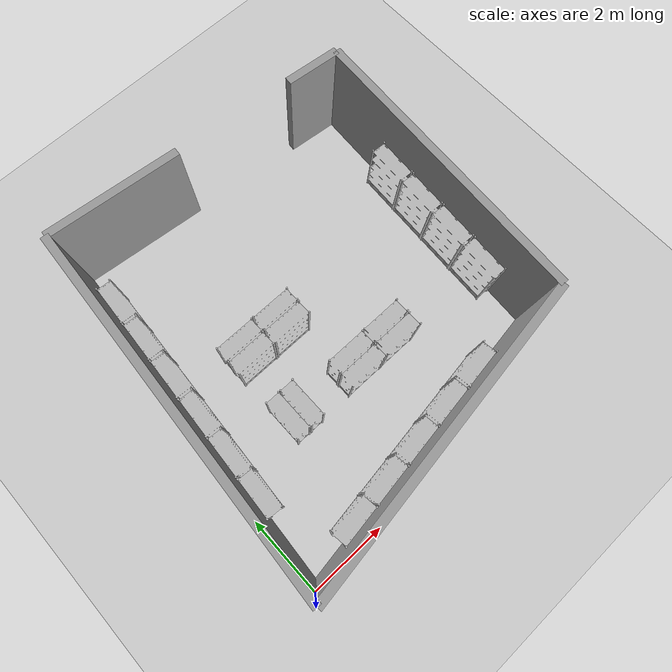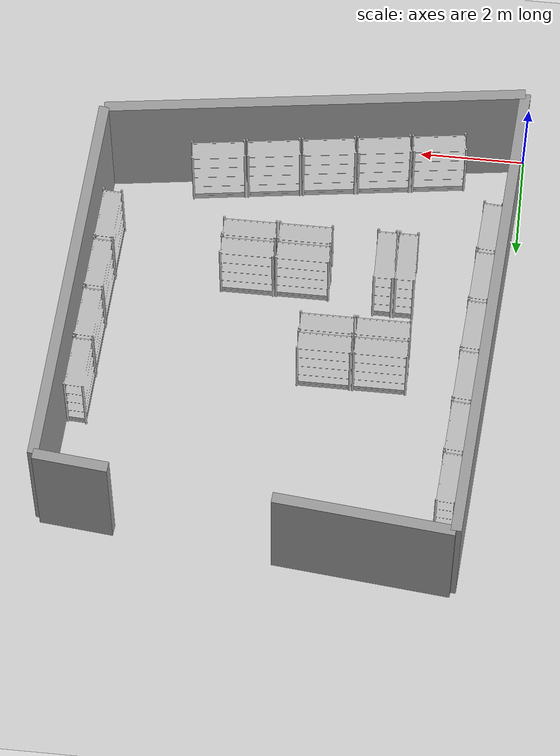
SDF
<sdf version="1.6">
  <world name="default">
    <light name="sun" type="directional">
      <cast_shadows>1</cast_shadows>
      <pose frame="">0 0 10 0 -0 0</pose>
      <diffuse>0.8 0.8 0.8 1</diffuse>
      <specular>0.2 0.2 0.2 1</specular>
      <attenuation>
        <range>1000</range>
        <constant>0.9</constant>
        <linear>0.01</linear>
        <quadratic>0.001</quadratic>
      </attenuation>
      <direction>-0.5 0.1 -0.9</direction>
    </light>
    <model name="ground_plane">
      <static>1</static>
      <link name="link">
        <collision name="collision">
          <geometry>
            <plane>
              <normal>0 0 1</normal>
              <size>100 100</size>
            </plane>
          </geometry>
          <surface>
            <contact>
              <collide_bitmask>65535</collide_bitmask>
              <ode />
            </contact>
            <friction>
              <ode>
                <mu>1000</mu>
                <mu2>1000</mu2>
              </ode>
              <torsional>
                <ode />
              </torsional>
            </friction>
            <bounce />
          </surface>
          <max_contacts>10</max_contacts>
        </collision>
        <visual name="visual">
          <cast_shadows>0</cast_shadows>
          <geometry>
            <plane>
              <normal>0 0 1</normal>
              <size>100 100</size>
            </plane>
          </geometry>
          <material>
            <script>
              <uri>file://media/materials/scripts/gazebo.material</uri>
              <name>Gazebo/Grey</name>
            </script>
          </material>
        </visual>
        <self_collide>0</self_collide>
        <enable_wind>0</enable_wind>
        <kinematic>0</kinematic>
      </link>
    </model>
    <gravity>0 0 -9.8</gravity>
    <magnetic_field>6e-06 2.3e-05 -4.2e-05</magnetic_field>
    <atmosphere type="adiabatic" />
    <physics name="default_physics" default="0" type="ode">
      <max_step_size>0.001</max_step_size>
      <real_time_factor>1</real_time_factor>
      <real_time_update_rate>1000</real_time_update_rate>
    </physics>
    <scene>
      <ambient>0.4 0.4 0.4 1</ambient>
      <background>0.7 0.7 0.7 1</background>
      <shadows>1</shadows>
    </scene>
    <audio>
      <device>default</device>
    </audio>
    <wind />
    <spherical_coordinates>
      <surface_model>EARTH_WGS84</surface_model>
      <latitude_deg>0</latitude_deg>
      <longitude_deg>0</longitude_deg>
      <elevation>0</elevation>
      <heading_deg>0</heading_deg>
    </spherical_coordinates>
    <gui fullscreen="0">
      <camera name="user_camera">
        <pose frame="">5.5458 -17.3868 19.7357 0 0.841797 1.67218</pose>
        <view_controller>orbit</view_controller>
        <projection_type>perspective</projection_type>
      </camera>
    </gui>
    <plugin name="ActorPosesPlugin" filename="libActorPosesPlugin.so" />
    <model name="store_shelf_moduled_0">
      <link name="link">
        <collision name="collision">
          <geometry>
            <mesh>
              <uri>model://store_shelf_moduled/meshes/store_shelf_moduled.dae</uri>
            </mesh>
          </geometry>
        </collision>
        <visual name="visual">
          <geometry>
            <mesh>
              <uri>model://store_shelf_moduled/meshes/store_shelf_moduled.dae</uri>
            </mesh>
          </geometry>
        </visual>
        <inertial>
          <mass>1000</mass>
          <inertia>
            <ixx>840083</ixx>
            <ixy>0</ixy>
            <ixz>0</ixz>
            <iyy>475500</iyy>
            <iyz>0</iyz>
            <izz>1.30208e+06</izz>
          </inertia>
        </inertial>
        <self_collide>0</self_collide>
        <enable_wind>0</enable_wind>
        <kinematic>0</kinematic>
      </link>
      <static>1</static>
      <pose frame="">1.136792 0.3391239 0 0 0 0.1324684</pose>
    </model>
    <model name="store_shelf_moduled_1">
      <link name="link">
        <collision name="collision">
          <geometry>
            <mesh>
              <uri>model://store_shelf_moduled/meshes/store_shelf_moduled.dae</uri>
            </mesh>
          </geometry>
        </collision>
        <visual name="visual">
          <geometry>
            <mesh>
              <uri>model://store_shelf_moduled/meshes/store_shelf_moduled.dae</uri>
            </mesh>
          </geometry>
        </visual>
        <inertial>
          <mass>1000</mass>
          <inertia>
            <ixx>840083</ixx>
            <ixy>0</ixy>
            <ixz>0</ixz>
            <iyy>475500</iyy>
            <iyz>0</iyz>
            <izz>1.30208e+06</izz>
          </inertia>
        </inertial>
        <self_collide>0</self_collide>
        <enable_wind>0</enable_wind>
        <kinematic>0</kinematic>
      </link>
      <static>1</static>
      <pose frame="">2.186792 0.4791239 0 0 0 0.1324684</pose>
    </model>
    <model name="store_shelf_moduled_2">
      <link name="link">
        <collision name="collision">
          <geometry>
            <mesh>
              <uri>model://store_shelf_moduled/meshes/store_shelf_moduled.dae</uri>
            </mesh>
          </geometry>
        </collision>
        <visual name="visual">
          <geometry>
            <mesh>
              <uri>model://store_shelf_moduled/meshes/store_shelf_moduled.dae</uri>
            </mesh>
          </geometry>
        </visual>
        <inertial>
          <mass>1000</mass>
          <inertia>
            <ixx>840083</ixx>
            <ixy>0</ixy>
            <ixz>0</ixz>
            <iyy>475500</iyy>
            <iyz>0</iyz>
            <izz>1.30208e+06</izz>
          </inertia>
        </inertial>
        <self_collide>0</self_collide>
        <enable_wind>0</enable_wind>
        <kinematic>0</kinematic>
      </link>
      <static>1</static>
      <pose frame="">3.236792 0.6191239 0 0 0 0.1324684</pose>
    </model>
    <model name="store_shelf_moduled_3">
      <link name="link">
        <collision name="collision">
          <geometry>
            <mesh>
              <uri>model://store_shelf_moduled/meshes/store_shelf_moduled.dae</uri>
            </mesh>
          </geometry>
        </collision>
        <visual name="visual">
          <geometry>
            <mesh>
              <uri>model://store_shelf_moduled/meshes/store_shelf_moduled.dae</uri>
            </mesh>
          </geometry>
        </visual>
        <inertial>
          <mass>1000</mass>
          <inertia>
            <ixx>840083</ixx>
            <ixy>0</ixy>
            <ixz>0</ixz>
            <iyy>475500</iyy>
            <iyz>0</iyz>
            <izz>1.30208e+06</izz>
          </inertia>
        </inertial>
        <self_collide>0</self_collide>
        <enable_wind>0</enable_wind>
        <kinematic>0</kinematic>
      </link>
      <static>1</static>
      <pose frame="">4.286792 0.7591239 0 0 0 0.1324684</pose>
    </model>
    <model name="store_shelf_moduled_4">
      <link name="link">
        <collision name="collision">
          <geometry>
            <mesh>
              <uri>model://store_shelf_moduled/meshes/store_shelf_moduled.dae</uri>
            </mesh>
          </geometry>
        </collision>
        <visual name="visual">
          <geometry>
            <mesh>
              <uri>model://store_shelf_moduled/meshes/store_shelf_moduled.dae</uri>
            </mesh>
          </geometry>
        </visual>
        <inertial>
          <mass>1000</mass>
          <inertia>
            <ixx>840083</ixx>
            <ixy>0</ixy>
            <ixz>0</ixz>
            <iyy>475500</iyy>
            <iyz>0</iyz>
            <izz>1.30208e+06</izz>
          </inertia>
        </inertial>
        <self_collide>0</self_collide>
        <enable_wind>0</enable_wind>
        <kinematic>0</kinematic>
      </link>
      <static>1</static>
      <pose frame="">5.336792 0.8991239 0 0 0 0.1324684</pose>
    </model>
    <model name="store_shelf_moduled_5">
      <link name="link">
        <collision name="collision">
          <geometry>
            <mesh>
              <uri>model://store_shelf_moduled/meshes/store_shelf_moduled.dae</uri>
            </mesh>
          </geometry>
        </collision>
        <visual name="visual">
          <geometry>
            <mesh>
              <uri>model://store_shelf_moduled/meshes/store_shelf_moduled.dae</uri>
            </mesh>
          </geometry>
        </visual>
        <inertial>
          <mass>1000</mass>
          <inertia>
            <ixx>840083</ixx>
            <ixy>0</ixy>
            <ixz>0</ixz>
            <iyy>475500</iyy>
            <iyz>0</iyz>
            <izz>1.30208e+06</izz>
          </inertia>
        </inertial>
        <self_collide>0</self_collide>
        <enable_wind>0</enable_wind>
        <kinematic>0</kinematic>
      </link>
      <static>1</static>
      <pose frame="">7.940165 2.205744 0 0 0 1.513325</pose>
    </model>
    <model name="store_shelf_moduled_6">
      <link name="link">
        <collision name="collision">
          <geometry>
            <mesh>
              <uri>model://store_shelf_moduled/meshes/store_shelf_moduled.dae</uri>
            </mesh>
          </geometry>
        </collision>
        <visual name="visual">
          <geometry>
            <mesh>
              <uri>model://store_shelf_moduled/meshes/store_shelf_moduled.dae</uri>
            </mesh>
          </geometry>
        </visual>
        <inertial>
          <mass>1000</mass>
          <inertia>
            <ixx>840083</ixx>
            <ixy>0</ixy>
            <ixz>0</ixz>
            <iyy>475500</iyy>
            <iyz>0</iyz>
            <izz>1.30208e+06</izz>
          </inertia>
        </inertial>
        <self_collide>0</self_collide>
        <enable_wind>0</enable_wind>
        <kinematic>0</kinematic>
      </link>
      <static>1</static>
      <pose frame="">8.000165 3.265744 0 0 0 1.513325</pose>
    </model>
    <model name="store_shelf_moduled_7">
      <link name="link">
        <collision name="collision">
          <geometry>
            <mesh>
              <uri>model://store_shelf_moduled/meshes/store_shelf_moduled.dae</uri>
            </mesh>
          </geometry>
        </collision>
        <visual name="visual">
          <geometry>
            <mesh>
              <uri>model://store_shelf_moduled/meshes/store_shelf_moduled.dae</uri>
            </mesh>
          </geometry>
        </visual>
        <inertial>
          <mass>1000</mass>
          <inertia>
            <ixx>840083</ixx>
            <ixy>0</ixy>
            <ixz>0</ixz>
            <iyy>475500</iyy>
            <iyz>0</iyz>
            <izz>1.30208e+06</izz>
          </inertia>
        </inertial>
        <self_collide>0</self_collide>
        <enable_wind>0</enable_wind>
        <kinematic>0</kinematic>
      </link>
      <static>1</static>
      <pose frame="">8.060164 4.325744 0 0 0 1.513325</pose>
    </model>
    <model name="store_shelf_moduled_8">
      <link name="link">
        <collision name="collision">
          <geometry>
            <mesh>
              <uri>model://store_shelf_moduled/meshes/store_shelf_moduled.dae</uri>
            </mesh>
          </geometry>
        </collision>
        <visual name="visual">
          <geometry>
            <mesh>
              <uri>model://store_shelf_moduled/meshes/store_shelf_moduled.dae</uri>
            </mesh>
          </geometry>
        </visual>
        <inertial>
          <mass>1000</mass>
          <inertia>
            <ixx>840083</ixx>
            <ixy>0</ixy>
            <ixz>0</ixz>
            <iyy>475500</iyy>
            <iyz>0</iyz>
            <izz>1.30208e+06</izz>
          </inertia>
        </inertial>
        <self_collide>0</self_collide>
        <enable_wind>0</enable_wind>
        <kinematic>0</kinematic>
      </link>
      <static>1</static>
      <pose frame="">8.120165 5.385744 0 0 0 1.513325</pose>
    </model>
    <model name="store_shelf_moduled_9">
      <link name="link">
        <collision name="collision">
          <geometry>
            <mesh>
              <uri>model://store_shelf_moduled/meshes/store_shelf_moduled.dae</uri>
            </mesh>
          </geometry>
        </collision>
        <visual name="visual">
          <geometry>
            <mesh>
              <uri>model://store_shelf_moduled/meshes/store_shelf_moduled.dae</uri>
            </mesh>
          </geometry>
        </visual>
        <inertial>
          <mass>1000</mass>
          <inertia>
            <ixx>840083</ixx>
            <ixy>0</ixy>
            <ixz>0</ixz>
            <iyy>475500</iyy>
            <iyz>0</iyz>
            <izz>1.30208e+06</izz>
          </inertia>
        </inertial>
        <self_collide>0</self_collide>
        <enable_wind>0</enable_wind>
        <kinematic>0</kinematic>
      </link>
      <static>1</static>
      <pose frame="">0.7297843 8.153435 0 0 0 -1.636491</pose>
    </model>
    <model name="store_shelf_moduled_10">
      <link name="link">
        <collision name="collision">
          <geometry>
            <mesh>
              <uri>model://store_shelf_moduled/meshes/store_shelf_moduled.dae</uri>
            </mesh>
          </geometry>
        </collision>
        <visual name="visual">
          <geometry>
            <mesh>
              <uri>model://store_shelf_moduled/meshes/store_shelf_moduled.dae</uri>
            </mesh>
          </geometry>
        </visual>
        <inertial>
          <mass>1000</mass>
          <inertia>
            <ixx>840083</ixx>
            <ixy>0</ixy>
            <ixz>0</ixz>
            <iyy>475500</iyy>
            <iyz>0</iyz>
            <izz>1.30208e+06</izz>
          </inertia>
        </inertial>
        <self_collide>0</self_collide>
        <enable_wind>0</enable_wind>
        <kinematic>0</kinematic>
      </link>
      <static>1</static>
      <pose frame="">0.6597843 7.093435 0 0 0 -1.636491</pose>
    </model>
    <model name="store_shelf_moduled_11">
      <link name="link">
        <collision name="collision">
          <geometry>
            <mesh>
              <uri>model://store_shelf_moduled/meshes/store_shelf_moduled.dae</uri>
            </mesh>
          </geometry>
        </collision>
        <visual name="visual">
          <geometry>
            <mesh>
              <uri>model://store_shelf_moduled/meshes/store_shelf_moduled.dae</uri>
            </mesh>
          </geometry>
        </visual>
        <inertial>
          <mass>1000</mass>
          <inertia>
            <ixx>840083</ixx>
            <ixy>0</ixy>
            <ixz>0</ixz>
            <iyy>475500</iyy>
            <iyz>0</iyz>
            <izz>1.30208e+06</izz>
          </inertia>
        </inertial>
        <self_collide>0</self_collide>
        <enable_wind>0</enable_wind>
        <kinematic>0</kinematic>
      </link>
      <static>1</static>
      <pose frame="">0.5897843 6.033435 0 0 0 -1.636491</pose>
    </model>
    <model name="store_shelf_moduled_12">
      <link name="link">
        <collision name="collision">
          <geometry>
            <mesh>
              <uri>model://store_shelf_moduled/meshes/store_shelf_moduled.dae</uri>
            </mesh>
          </geometry>
        </collision>
        <visual name="visual">
          <geometry>
            <mesh>
              <uri>model://store_shelf_moduled/meshes/store_shelf_moduled.dae</uri>
            </mesh>
          </geometry>
        </visual>
        <inertial>
          <mass>1000</mass>
          <inertia>
            <ixx>840083</ixx>
            <ixy>0</ixy>
            <ixz>0</ixz>
            <iyy>475500</iyy>
            <iyz>0</iyz>
            <izz>1.30208e+06</izz>
          </inertia>
        </inertial>
        <self_collide>0</self_collide>
        <enable_wind>0</enable_wind>
        <kinematic>0</kinematic>
      </link>
      <static>1</static>
      <pose frame="">0.5197843 4.973435 0 0 0 -1.636491</pose>
    </model>
    <model name="store_shelf_moduled_13">
      <link name="link">
        <collision name="collision">
          <geometry>
            <mesh>
              <uri>model://store_shelf_moduled/meshes/store_shelf_moduled.dae</uri>
            </mesh>
          </geometry>
        </collision>
        <visual name="visual">
          <geometry>
            <mesh>
              <uri>model://store_shelf_moduled/meshes/store_shelf_moduled.dae</uri>
            </mesh>
          </geometry>
        </visual>
        <inertial>
          <mass>1000</mass>
          <inertia>
            <ixx>840083</ixx>
            <ixy>0</ixy>
            <ixz>0</ixz>
            <iyy>475500</iyy>
            <iyz>0</iyz>
            <izz>1.30208e+06</izz>
          </inertia>
        </inertial>
        <self_collide>0</self_collide>
        <enable_wind>0</enable_wind>
        <kinematic>0</kinematic>
      </link>
      <static>1</static>
      <pose frame="">0.4497843 3.923435 0 0 0 -1.636491</pose>
    </model>
    <model name="store_shelf_moduled_14">
      <link name="link">
        <collision name="collision">
          <geometry>
            <mesh>
              <uri>model://store_shelf_moduled/meshes/store_shelf_moduled.dae</uri>
            </mesh>
          </geometry>
        </collision>
        <visual name="visual">
          <geometry>
            <mesh>
              <uri>model://store_shelf_moduled/meshes/store_shelf_moduled.dae</uri>
            </mesh>
          </geometry>
        </visual>
        <inertial>
          <mass>1000</mass>
          <inertia>
            <ixx>840083</ixx>
            <ixy>0</ixy>
            <ixz>0</ixz>
            <iyy>475500</iyy>
            <iyz>0</iyz>
            <izz>1.30208e+06</izz>
          </inertia>
        </inertial>
        <self_collide>0</self_collide>
        <enable_wind>0</enable_wind>
        <kinematic>0</kinematic>
      </link>
      <static>1</static>
      <pose frame="">0.3797843 2.863435 0 0 0 -1.636491</pose>
    </model>
    <model name="store_shelf_moduled_15">
      <link name="link">
        <collision name="collision">
          <geometry>
            <mesh>
              <uri>model://store_shelf_moduled/meshes/store_shelf_moduled.dae</uri>
            </mesh>
          </geometry>
        </collision>
        <visual name="visual">
          <geometry>
            <mesh>
              <uri>model://store_shelf_moduled/meshes/store_shelf_moduled.dae</uri>
            </mesh>
          </geometry>
        </visual>
        <inertial>
          <mass>1000</mass>
          <inertia>
            <ixx>840083</ixx>
            <ixy>0</ixy>
            <ixz>0</ixz>
            <iyy>475500</iyy>
            <iyz>0</iyz>
            <izz>1.30208e+06</izz>
          </inertia>
        </inertial>
        <self_collide>0</self_collide>
        <enable_wind>0</enable_wind>
        <kinematic>0</kinematic>
      </link>
      <static>1</static>
      <pose frame="">1.84 4.87 0 0 0 0</pose>
    </model>
    <model name="store_shelf_moduled_16">
      <link name="link">
        <collision name="collision">
          <geometry>
            <mesh>
              <uri>model://store_shelf_moduled/meshes/store_shelf_moduled.dae</uri>
            </mesh>
          </geometry>
        </collision>
        <visual name="visual">
          <geometry>
            <mesh>
              <uri>model://store_shelf_moduled/meshes/store_shelf_moduled.dae</uri>
            </mesh>
          </geometry>
        </visual>
        <inertial>
          <mass>1000</mass>
          <inertia>
            <ixx>840083</ixx>
            <ixy>0</ixy>
            <ixz>0</ixz>
            <iyy>475500</iyy>
            <iyz>0</iyz>
            <izz>1.30208e+06</izz>
          </inertia>
        </inertial>
        <self_collide>0</self_collide>
        <enable_wind>0</enable_wind>
        <kinematic>0</kinematic>
      </link>
      <static>1</static>
      <pose frame="">2.9 4.87 0 0 0 -3.141593</pose>
    </model>
    <model name="store_shelf_moduled_17">
      <link name="link">
        <collision name="collision">
          <geometry>
            <mesh>
              <uri>model://store_shelf_moduled/meshes/store_shelf_moduled.dae</uri>
            </mesh>
          </geometry>
        </collision>
        <visual name="visual">
          <geometry>
            <mesh>
              <uri>model://store_shelf_moduled/meshes/store_shelf_moduled.dae</uri>
            </mesh>
          </geometry>
        </visual>
        <inertial>
          <mass>1000</mass>
          <inertia>
            <ixx>840083</ixx>
            <ixy>0</ixy>
            <ixz>0</ixz>
            <iyy>475500</iyy>
            <iyz>0</iyz>
            <izz>1.30208e+06</izz>
          </inertia>
        </inertial>
        <self_collide>0</self_collide>
        <enable_wind>0</enable_wind>
        <kinematic>0</kinematic>
      </link>
      <static>1</static>
      <pose frame="">2.9 4.87 0 0 0 0</pose>
    </model>
    <model name="store_shelf_moduled_18">
      <link name="link">
        <collision name="collision">
          <geometry>
            <mesh>
              <uri>model://store_shelf_moduled/meshes/store_shelf_moduled.dae</uri>
            </mesh>
          </geometry>
        </collision>
        <visual name="visual">
          <geometry>
            <mesh>
              <uri>model://store_shelf_moduled/meshes/store_shelf_moduled.dae</uri>
            </mesh>
          </geometry>
        </visual>
        <inertial>
          <mass>1000</mass>
          <inertia>
            <ixx>840083</ixx>
            <ixy>0</ixy>
            <ixz>0</ixz>
            <iyy>475500</iyy>
            <iyz>0</iyz>
            <izz>1.30208e+06</izz>
          </inertia>
        </inertial>
        <self_collide>0</self_collide>
        <enable_wind>0</enable_wind>
        <kinematic>0</kinematic>
      </link>
      <static>1</static>
      <pose frame="">3.96 4.87 0 0 0 -3.141593</pose>
    </model>
    <model name="store_shelf_moduled_19">
      <link name="link">
        <collision name="collision">
          <geometry>
            <mesh>
              <uri>model://store_shelf_moduled/meshes/store_shelf_moduled.dae</uri>
            </mesh>
          </geometry>
        </collision>
        <visual name="visual">
          <geometry>
            <mesh>
              <uri>model://store_shelf_moduled/meshes/store_shelf_moduled.dae</uri>
            </mesh>
          </geometry>
        </visual>
        <inertial>
          <mass>1000</mass>
          <inertia>
            <ixx>840083</ixx>
            <ixy>0</ixy>
            <ixz>0</ixz>
            <iyy>475500</iyy>
            <iyz>0</iyz>
            <izz>1.30208e+06</izz>
          </inertia>
        </inertial>
        <self_collide>0</self_collide>
        <enable_wind>0</enable_wind>
        <kinematic>0</kinematic>
      </link>
      <static>1</static>
      <pose frame="">3.48 3.01 0 0 0 0</pose>
    </model>
    <model name="store_shelf_moduled_20">
      <link name="link">
        <collision name="collision">
          <geometry>
            <mesh>
              <uri>model://store_shelf_moduled/meshes/store_shelf_moduled.dae</uri>
            </mesh>
          </geometry>
        </collision>
        <visual name="visual">
          <geometry>
            <mesh>
              <uri>model://store_shelf_moduled/meshes/store_shelf_moduled.dae</uri>
            </mesh>
          </geometry>
        </visual>
        <inertial>
          <mass>1000</mass>
          <inertia>
            <ixx>840083</ixx>
            <ixy>0</ixy>
            <ixz>0</ixz>
            <iyy>475500</iyy>
            <iyz>0</iyz>
            <izz>1.30208e+06</izz>
          </inertia>
        </inertial>
        <self_collide>0</self_collide>
        <enable_wind>0</enable_wind>
        <kinematic>0</kinematic>
      </link>
      <static>1</static>
      <pose frame="">4.54 3.01 0 0 0 -3.141593</pose>
    </model>
    <model name="store_shelf_moduled_21">
      <link name="link">
        <collision name="collision">
          <geometry>
            <mesh>
              <uri>model://store_shelf_moduled/meshes/store_shelf_moduled.dae</uri>
            </mesh>
          </geometry>
        </collision>
        <visual name="visual">
          <geometry>
            <mesh>
              <uri>model://store_shelf_moduled/meshes/store_shelf_moduled.dae</uri>
            </mesh>
          </geometry>
        </visual>
        <inertial>
          <mass>1000</mass>
          <inertia>
            <ixx>840083</ixx>
            <ixy>0</ixy>
            <ixz>0</ixz>
            <iyy>475500</iyy>
            <iyz>0</iyz>
            <izz>1.30208e+06</izz>
          </inertia>
        </inertial>
        <self_collide>0</self_collide>
        <enable_wind>0</enable_wind>
        <kinematic>0</kinematic>
      </link>
      <static>1</static>
      <pose frame="">4.54 3.01 0 0 0 0</pose>
    </model>
    <model name="store_shelf_moduled_22">
      <link name="link">
        <collision name="collision">
          <geometry>
            <mesh>
              <uri>model://store_shelf_moduled/meshes/store_shelf_moduled.dae</uri>
            </mesh>
          </geometry>
        </collision>
        <visual name="visual">
          <geometry>
            <mesh>
              <uri>model://store_shelf_moduled/meshes/store_shelf_moduled.dae</uri>
            </mesh>
          </geometry>
        </visual>
        <inertial>
          <mass>1000</mass>
          <inertia>
            <ixx>840083</ixx>
            <ixy>0</ixy>
            <ixz>0</ixz>
            <iyy>475500</iyy>
            <iyz>0</iyz>
            <izz>1.30208e+06</izz>
          </inertia>
        </inertial>
        <self_collide>0</self_collide>
        <enable_wind>0</enable_wind>
        <kinematic>0</kinematic>
      </link>
      <static>1</static>
      <pose frame="">5.6 3.01 0 0 0 -3.141593</pose>
    </model>
    <model name="store_shelf_moduled_23">
      <link name="link">
        <collision name="collision">
          <geometry>
            <mesh>
              <uri>model://store_shelf_moduled/meshes/store_shelf_moduled.dae</uri>
            </mesh>
          </geometry>
        </collision>
        <visual name="visual">
          <geometry>
            <mesh>
              <uri>model://store_shelf_moduled/meshes/store_shelf_moduled.dae</uri>
            </mesh>
          </geometry>
        </visual>
        <inertial>
          <mass>1000</mass>
          <inertia>
            <ixx>840083</ixx>
            <ixy>0</ixy>
            <ixz>0</ixz>
            <iyy>475500</iyy>
            <iyz>0</iyz>
            <izz>1.30208e+06</izz>
          </inertia>
        </inertial>
        <self_collide>0</self_collide>
        <enable_wind>0</enable_wind>
        <kinematic>0</kinematic>
      </link>
      <static>1</static>
      <pose frame="">2.26 2.59 0 0 0 1.570796</pose>
    </model>
    <model name="store_shelf_moduled_24">
      <link name="link">
        <collision name="collision">
          <geometry>
            <mesh>
              <uri>model://store_shelf_moduled/meshes/store_shelf_moduled.dae</uri>
            </mesh>
          </geometry>
        </collision>
        <visual name="visual">
          <geometry>
            <mesh>
              <uri>model://store_shelf_moduled/meshes/store_shelf_moduled.dae</uri>
            </mesh>
          </geometry>
        </visual>
        <inertial>
          <mass>1000</mass>
          <inertia>
            <ixx>840083</ixx>
            <ixy>0</ixy>
            <ixz>0</ixz>
            <iyy>475500</iyy>
            <iyz>0</iyz>
            <izz>1.30208e+06</izz>
          </inertia>
        </inertial>
        <self_collide>0</self_collide>
        <enable_wind>0</enable_wind>
        <kinematic>0</kinematic>
      </link>
      <static>1</static>
      <pose frame="">2.26 3.65 0 0 0 -1.570796</pose>
    </model>
    <model name="grey_wall0">
      <static>1</static>
      <link name="link">
        <pose frame="">4.04 0.625 1.4 0 0 0.1324684</pose>
        <visual name="visual">
          <cast_shadows>0</cast_shadows>
          <geometry>
            <box>
              <size>7.949648 0.2 2.8</size>
            </box>
          </geometry>
          <material>
            <name>vrc/grey_wall</name>
            <script>
              <uri>model://grey_wall/materials/scripts</uri>
              <uri>model://grey_wall/materials/textures</uri>
              <name>vrc/grey_wall</name>
            </script>
          </material>
        </visual>
        <collision name="collision">
          <geometry>
            <box>
              <size>7.949648 0.2 2.8</size>
            </box>
          </geometry>
          <max_contacts>5</max_contacts>
        </collision>
      </link>
    </model>
    <model name="grey_wall1">
      <static>1</static>
      <link name="link">
        <pose frame="">8.19 4.8 1.4 0 0 1.513325</pose>
        <visual name="visual">
          <cast_shadows>0</cast_shadows>
          <geometry>
            <box>
              <size>7.312072 0.2 2.8</size>
            </box>
          </geometry>
          <material>
            <name>vrc/grey_wall</name>
            <script>
              <uri>model://grey_wall/materials/scripts</uri>
              <uri>model://grey_wall/materials/textures</uri>
              <name>vrc/grey_wall</name>
            </script>
          </material>
        </visual>
        <collision name="collision">
          <geometry>
            <box>
              <size>7.312072 0.2 2.8</size>
            </box>
          </geometry>
          <max_contacts>5</max_contacts>
        </collision>
      </link>
    </model>
    <model name="grey_wall2">
      <static>1</static>
      <link name="link">
        <pose frame="">7.71 8.52 1.4 0 0 3.040489</pose>
        <visual name="visual">
          <cast_shadows>0</cast_shadows>
          <geometry>
            <box>
              <size>1.387083 0.2 2.8</size>
            </box>
          </geometry>
          <material>
            <name>vrc/grey_wall</name>
            <script>
              <uri>model://grey_wall/materials/scripts</uri>
              <uri>model://grey_wall/materials/textures</uri>
              <name>vrc/grey_wall</name>
            </script>
          </material>
        </visual>
        <collision name="collision">
          <geometry>
            <box>
              <size>1.387083 0.2 2.8</size>
            </box>
          </geometry>
          <max_contacts>5</max_contacts>
        </collision>
      </link>
    </model>
    <model name="grey_wall3">
      <static>1</static>
      <link name="link">
        <pose frame="">2.365 9.055 1.4 0 0 3.042816</pose>
        <visual name="visual">
          <cast_shadows>0</cast_shadows>
          <geometry>
            <box>
              <size>3.346311 0.2 2.8</size>
            </box>
          </geometry>
          <material>
            <name>vrc/grey_wall</name>
            <script>
              <uri>model://grey_wall/materials/scripts</uri>
              <uri>model://grey_wall/materials/textures</uri>
              <name>vrc/grey_wall</name>
            </script>
          </material>
        </visual>
        <collision name="collision">
          <geometry>
            <box>
              <size>3.346311 0.2 2.8</size>
            </box>
          </geometry>
          <max_contacts>5</max_contacts>
        </collision>
      </link>
    </model>
    <model name="grey_wall4">
      <static>1</static>
      <link name="link">
        <pose frame="">0.4 4.66 1.4 0 0 -1.636491</pose>
        <visual name="visual">
          <cast_shadows>0</cast_shadows>
          <geometry>
            <box>
              <size>9.139715 0.2 2.8</size>
            </box>
          </geometry>
          <material>
            <name>vrc/grey_wall</name>
            <script>
              <uri>model://grey_wall/materials/scripts</uri>
              <uri>model://grey_wall/materials/textures</uri>
              <name>vrc/grey_wall</name>
            </script>
          </material>
        </visual>
        <collision name="collision">
          <geometry>
            <box>
              <size>9.139715 0.2 2.8</size>
            </box>
          </geometry>
          <max_contacts>5</max_contacts>
        </collision>
      </link>
    </model>
  </world>
</sdf>
